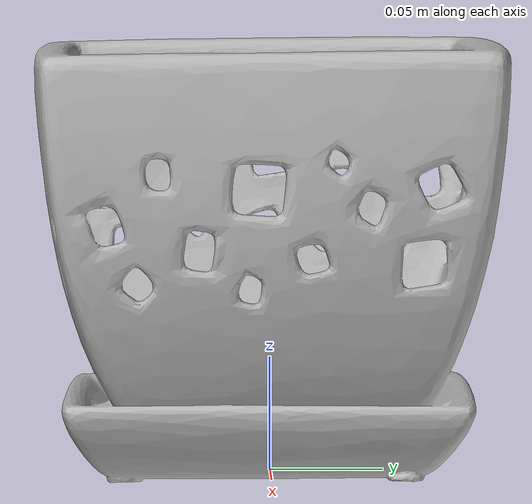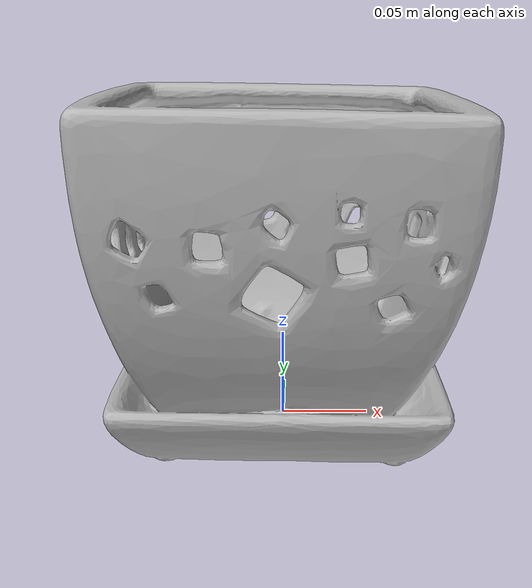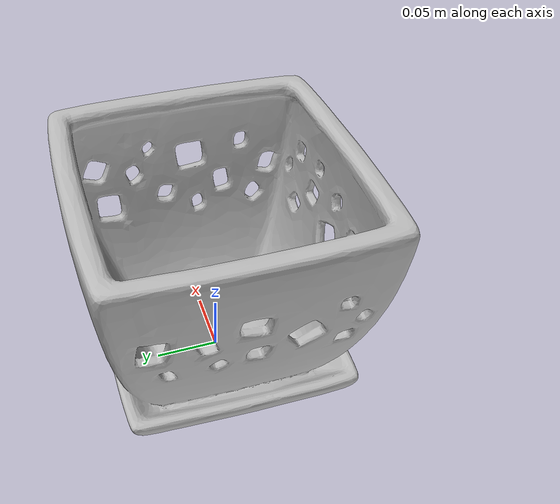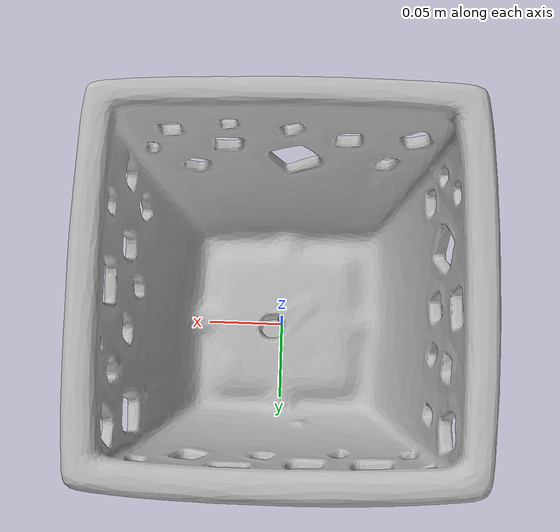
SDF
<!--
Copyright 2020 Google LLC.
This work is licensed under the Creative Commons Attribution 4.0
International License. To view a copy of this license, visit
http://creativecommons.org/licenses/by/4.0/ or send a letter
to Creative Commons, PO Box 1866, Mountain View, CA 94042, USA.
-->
<?xml version="1.0" ?>
<sdf version="1.6">
  <model name="Down_To_Earth_Orchid_Pot_Ceramic_Lime">
    <link name="link_0">
      <visual name="visual">
        <geometry>
          <mesh>
            <uri>meshes/model.obj</uri>
            <scale>1.5 1.5 1.5</scale>
          </mesh>
        </geometry>
      </visual>
      <collision name="collision_0">
        <geometry>
          <mesh>
            <uri>meshes/model.obj</uri>
            <scale>1.5 1.5 1.5</scale>
          </mesh>
        </geometry>
      </collision>
    </link>
  </model>
</sdf>
